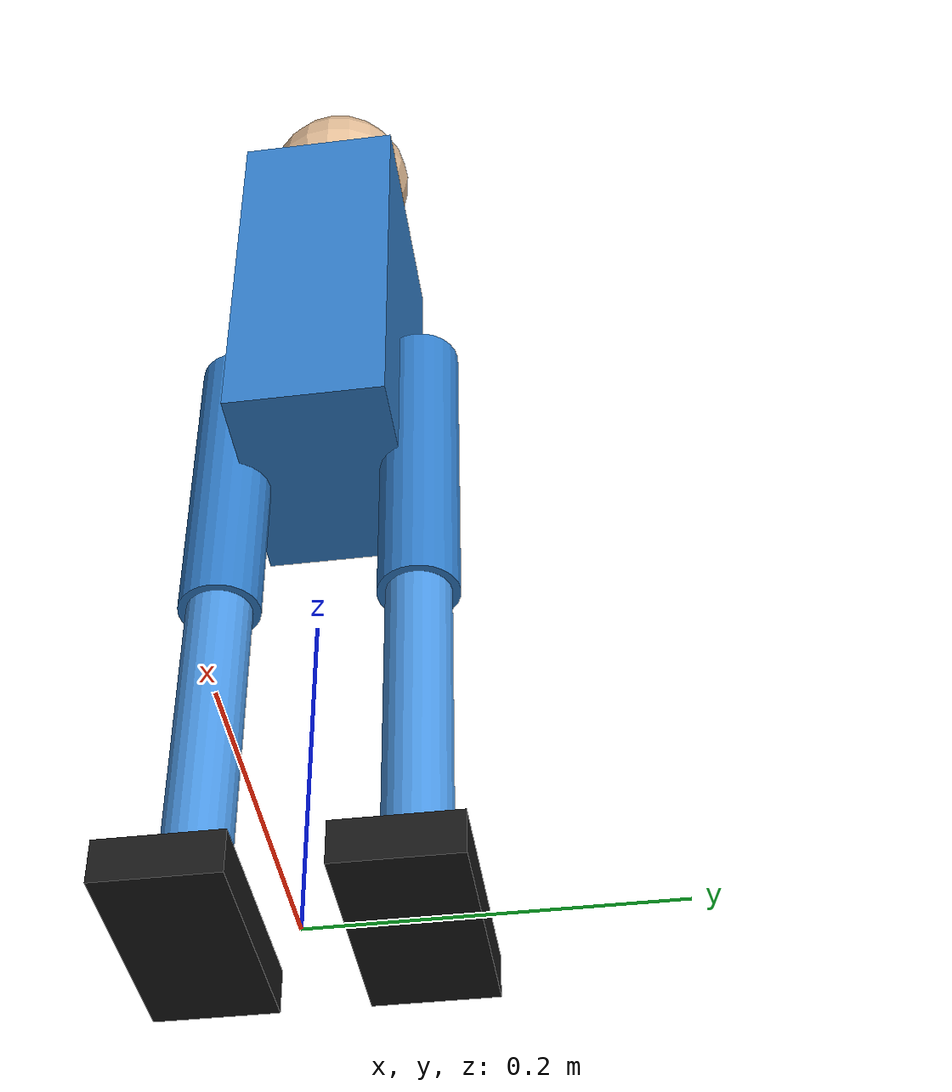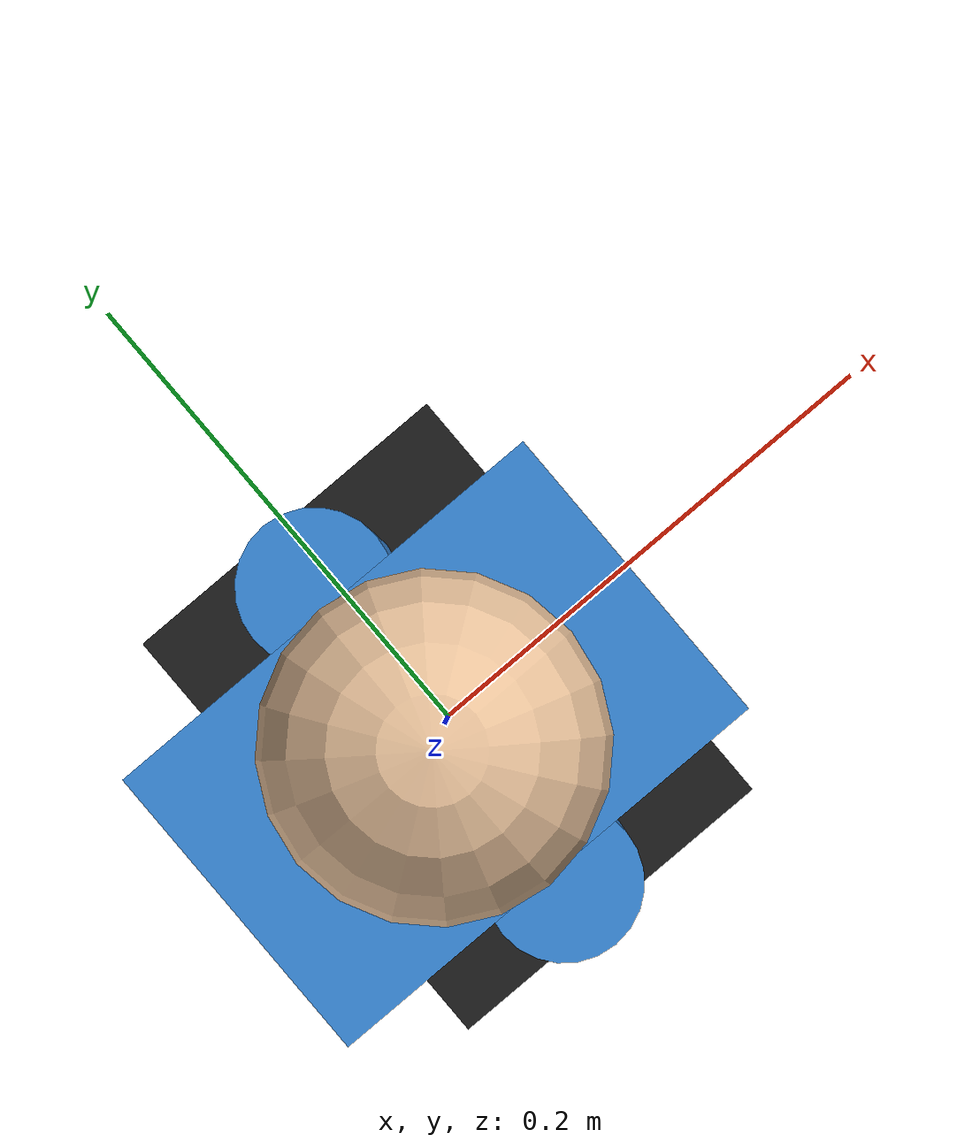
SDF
<?xml version="1.0"?>
<sdf version="1.9">
  <model name="ArduBiped_Proto">
    <pose>0 0 0.445 0 0 0</pose>
    <link name="torso">
      <inertial><mass>2.0</mass>
        <inertia><ixx>0.020</ixx><ixy>0</ixy><ixz>0</ixz><iyy>0.020</iyy><iyz>0</iyz><izz>0.010</izz></inertia>
      </inertial>
      <collision name="col"><geometry><box><size>0.15 0.10 0.25</size></box></geometry></collision>
      <visual name="vis"><geometry><box><size>0.15 0.10 0.25</size></box></geometry>
        <material><ambient>0.2 0.5 0.8 1</ambient><diffuse>0.2 0.5 0.8 1</diffuse></material>
      </visual>
      <sensor name="imu_sensor" type="imu"><always_on>1</always_on><update_rate>1000</update_rate></sensor>
    </link>
    <link name="head"><pose>0 0 0.175 0 0 0</pose>
      <inertial><mass>0.2</mass><inertia><ixx>0.0002</ixx><ixy>0</ixy><ixz>0</ixz><iyy>0.0002</iyy><iyz>0</iyz><izz>0.0002</izz></inertia></inertial>
      <collision name="col"><geometry><sphere><radius>0.05</radius></sphere></geometry></collision>
      <visual name="vis"><geometry><sphere><radius>0.05</radius></sphere></geometry>
        <material><ambient>0.9 0.75 0.6 1</ambient><diffuse>0.9 0.75 0.6 1</diffuse></material></visual>
    </link>
    <joint name="head_joint" type="fixed"><parent>torso</parent><child>head</child></joint>
    <link name="l_thigh"><pose>0 0.06 -0.125 0 0 0</pose>
      <inertial><mass>0.4</mass><inertia><ixx>0.003</ixx><ixy>0</ixy><ixz>0</ixz><iyy>0.003</iyy><iyz>0</iyz><izz>0.0001</izz></inertia></inertial>
      <collision name="col"><geometry><cylinder><radius>0.025</radius><length>0.20</length></cylinder></geometry></collision>
      <visual name="vis"><geometry><cylinder><radius>0.025</radius><length>0.20</length></cylinder></geometry>
        <material><ambient>0.2 0.5 0.8 1</ambient><diffuse>0.2 0.5 0.8 1</diffuse></material></visual>
    </link>
    <link name="l_shin"><pose>0 0.06 -0.325 0 0 0</pose>
      <inertial><mass>0.25</mass><inertia><ixx>0.001</ixx><ixy>0</ixy><ixz>0</ixz><iyy>0.001</iyy><iyz>0</iyz><izz>0.00008</izz></inertia></inertial>
      <collision name="col"><geometry><cylinder><radius>0.020</radius><length>0.20</length></cylinder></geometry></collision>
      <visual name="vis"><geometry><cylinder><radius>0.020</radius><length>0.20</length></cylinder></geometry>
        <material><ambient>0.3 0.6 0.9 1</ambient><diffuse>0.3 0.6 0.9 1</diffuse></material></visual>
    </link>
    <link name="l_foot"><pose>0 0.06 -0.440 0 0 0</pose>
      <inertial><mass>0.1</mass><inertia><ixx>0.0001</ixx><ixy>0</ixy><ixz>0</ixz><iyy>0.0001</iyy><iyz>0</iyz><izz>0.0001</izz></inertia></inertial>
      <collision name="col"><geometry><box><size>0.14 0.07 0.025</size></box></geometry></collision>
      <visual name="vis"><geometry><box><size>0.14 0.07 0.025</size></box></geometry>
        <material><ambient>0.1 0.1 0.1 1</ambient><diffuse>0.1 0.1 0.1 1</diffuse></material></visual>
    </link>
    <link name="r_thigh"><pose>0 -0.06 -0.125 0 0 0</pose>
      <inertial><mass>0.4</mass><inertia><ixx>0.003</ixx><ixy>0</ixy><ixz>0</ixz><iyy>0.003</iyy><iyz>0</iyz><izz>0.0001</izz></inertia></inertial>
      <collision name="col"><geometry><cylinder><radius>0.025</radius><length>0.20</length></cylinder></geometry></collision>
      <visual name="vis"><geometry><cylinder><radius>0.025</radius><length>0.20</length></cylinder></geometry>
        <material><ambient>0.2 0.5 0.8 1</ambient><diffuse>0.2 0.5 0.8 1</diffuse></material></visual>
    </link>
    <link name="r_shin"><pose>0 -0.06 -0.325 0 0 0</pose>
      <inertial><mass>0.25</mass><inertia><ixx>0.001</ixx><ixy>0</ixy><ixz>0</ixz><iyy>0.001</iyy><iyz>0</iyz><izz>0.00008</izz></inertia></inertial>
      <collision name="col"><geometry><cylinder><radius>0.020</radius><length>0.20</length></cylinder></geometry></collision>
      <visual name="vis"><geometry><cylinder><radius>0.020</radius><length>0.20</length></cylinder></geometry>
        <material><ambient>0.3 0.6 0.9 1</ambient><diffuse>0.3 0.6 0.9 1</diffuse></material></visual>
    </link>
    <link name="r_foot"><pose>0 -0.06 -0.440 0 0 0</pose>
      <inertial><mass>0.1</mass><inertia><ixx>0.0001</ixx><ixy>0</ixy><ixz>0</ixz><iyy>0.0001</iyy><iyz>0</iyz><izz>0.0001</izz></inertia></inertial>
      <collision name="col"><geometry><box><size>0.14 0.07 0.025</size></box></geometry></collision>
      <visual name="vis"><geometry><box><size>0.14 0.07 0.025</size></box></geometry>
        <material><ambient>0.1 0.1 0.1 1</ambient><diffuse>0.1 0.1 0.1 1</diffuse></material></visual>
    </link>
    <joint name="l_hip_pitch" type="revolute">
      <parent>torso</parent><child>l_thigh</child>
      <pose>0 0.06 -0.025 0 0 0</pose>
      <axis><xyz>0 1 0</xyz>
        <limit><lower>-0.785</lower><upper>0.785</upper><effort>50</effort><velocity>5</velocity></limit>
        <dynamics><damping>8.0</damping><friction>1.0</friction></dynamics>
      </axis>
    </joint>
    <joint name="l_knee" type="revolute">
      <parent>l_thigh</parent><child>l_shin</child>
      <pose>0 0.06 -0.225 0 0 0</pose>
      <axis><xyz>0 1 0</xyz>
        <limit><lower>-0.1</lower><upper>1.571</upper><effort>50</effort><velocity>5</velocity></limit>
        <dynamics><damping>8.0</damping><friction>1.0</friction></dynamics>
      </axis>
    </joint>
    <joint name="l_ankle" type="fixed"><parent>l_shin</parent><child>l_foot</child></joint>
    <joint name="r_hip_pitch" type="revolute">
      <parent>torso</parent><child>r_thigh</child>
      <pose>0 -0.06 -0.025 0 0 0</pose>
      <axis><xyz>0 1 0</xyz>
        <limit><lower>-0.785</lower><upper>0.785</upper><effort>50</effort><velocity>5</velocity></limit>
        <dynamics><damping>8.0</damping><friction>1.0</friction></dynamics>
      </axis>
    </joint>
    <joint name="r_knee" type="revolute">
      <parent>r_thigh</parent><child>r_shin</child>
      <pose>0 -0.06 -0.225 0 0 0</pose>
      <axis><xyz>0 1 0</xyz>
        <limit><lower>-0.1</lower><upper>1.571</upper><effort>50</effort><velocity>5</velocity></limit>
        <dynamics><damping>8.0</damping><friction>1.0</friction></dynamics>
      </axis>
    </joint>
    <joint name="r_ankle" type="fixed"><parent>r_shin</parent><child>r_foot</child></joint>
    <plugin filename="gz-sim-joint-position-controller-system" name="gz::sim::systems::JointPositionController">
      <joint_name>l_hip_pitch</joint_name><topic>/l_hip_pitch/cmd</topic>
      <p_gain>40</p_gain><i_gain>0.1</i_gain><d_gain>2.0</d_gain>
    </plugin>
    <plugin filename="gz-sim-joint-position-controller-system" name="gz::sim::systems::JointPositionController">
      <joint_name>r_hip_pitch</joint_name><topic>/r_hip_pitch/cmd</topic>
      <p_gain>40</p_gain><i_gain>0.1</i_gain><d_gain>2.0</d_gain>
    </plugin>
    <plugin filename="gz-sim-joint-position-controller-system" name="gz::sim::systems::JointPositionController">
      <joint_name>l_knee</joint_name><topic>/l_knee/cmd</topic>
      <p_gain>40</p_gain><i_gain>0.1</i_gain><d_gain>2.0</d_gain>
    </plugin>
    <plugin filename="gz-sim-joint-position-controller-system" name="gz::sim::systems::JointPositionController">
      <joint_name>r_knee</joint_name><topic>/r_knee/cmd</topic>
      <p_gain>40</p_gain><i_gain>0.1</i_gain><d_gain>2.0</d_gain>
    </plugin>
    <plugin name="ArduPilotPlugin" filename="ArduPilotPlugin">
      <fdm_addr>127.0.0.1</fdm_addr><fdm_port_in>9002</fdm_port_in>
      <connectionTimeoutMaxCount>5</connectionTimeoutMaxCount><lock_step>0</lock_step>
      <modelXYZToAirplaneXForwardZDown degrees="true">0 0 0 180 0 0</modelXYZToAirplaneXForwardZDown>
      <gazeboXYZToNED degrees="true">0 0 0 180 0 90</gazeboXYZToNED>
      <imuName>torso::imu_sensor</imuName>
      <control channel="0"><jointName>l_hip_pitch</jointName><type>COMMAND</type>
        <cmd_topic>/l_hip_pitch/cmd</cmd_topic><p_gain>15.0</p_gain>
        <servo_min>1000</servo_min><servo_max>2000</servo_max><multiplier>1.571</multiplier><offset>-0.5</offset>
      </control>
      <control channel="1"><jointName>r_hip_pitch</jointName><type>COMMAND</type>
        <cmd_topic>/r_hip_pitch/cmd</cmd_topic><p_gain>15.0</p_gain>
        <servo_min>1000</servo_min><servo_max>2000</servo_max><multiplier>1.571</multiplier><offset>-0.5</offset>
      </control>
      <control channel="2"><jointName>l_knee</jointName><type>COMMAND</type>
        <cmd_topic>/l_knee/cmd</cmd_topic><p_gain>15.0</p_gain>
        <servo_min>1000</servo_min><servo_max>2000</servo_max><multiplier>1.571</multiplier><offset>-0.5</offset>
      </control>
      <control channel="3"><jointName>r_knee</jointName><type>COMMAND</type>
        <cmd_topic>/r_knee/cmd</cmd_topic><p_gain>15.0</p_gain>
        <servo_min>1000</servo_min><servo_max>2000</servo_max><multiplier>1.571</multiplier><offset>-0.5</offset>
        </control>
      </plugin>
  </model>
</sdf>
